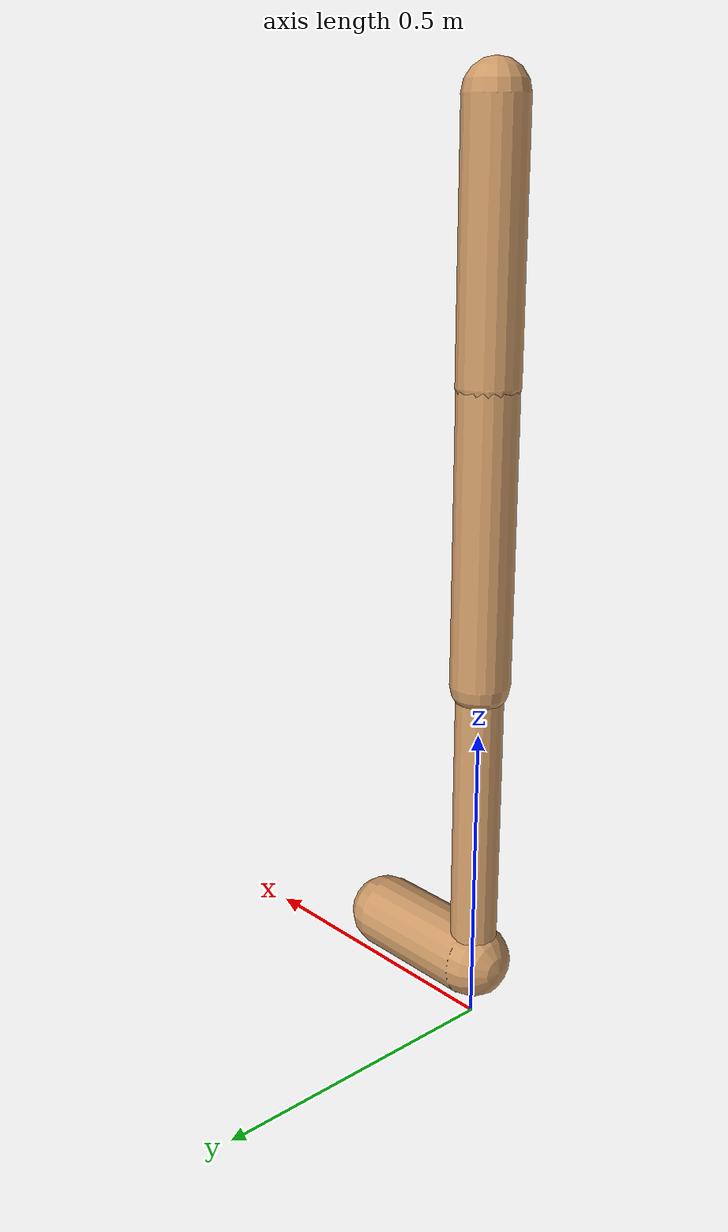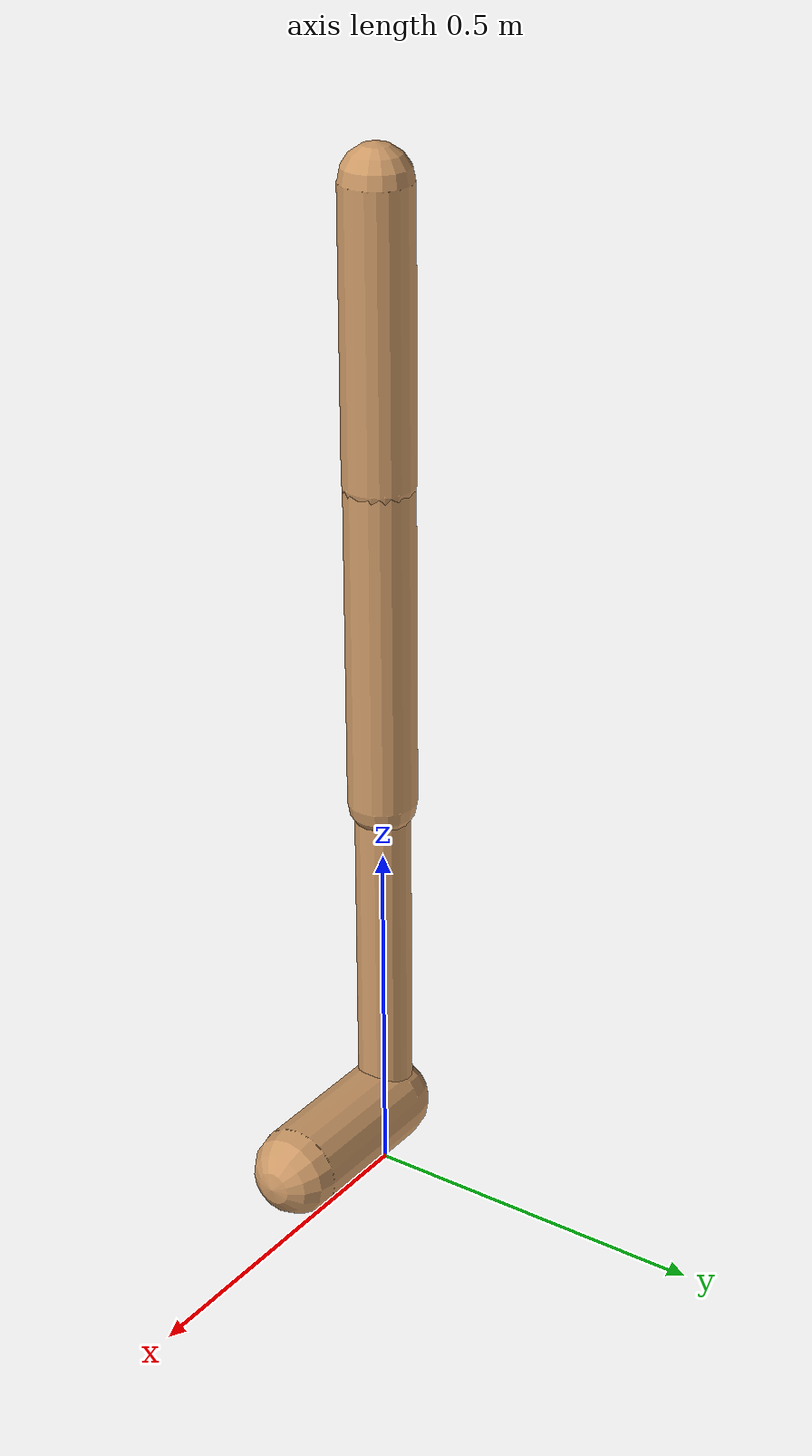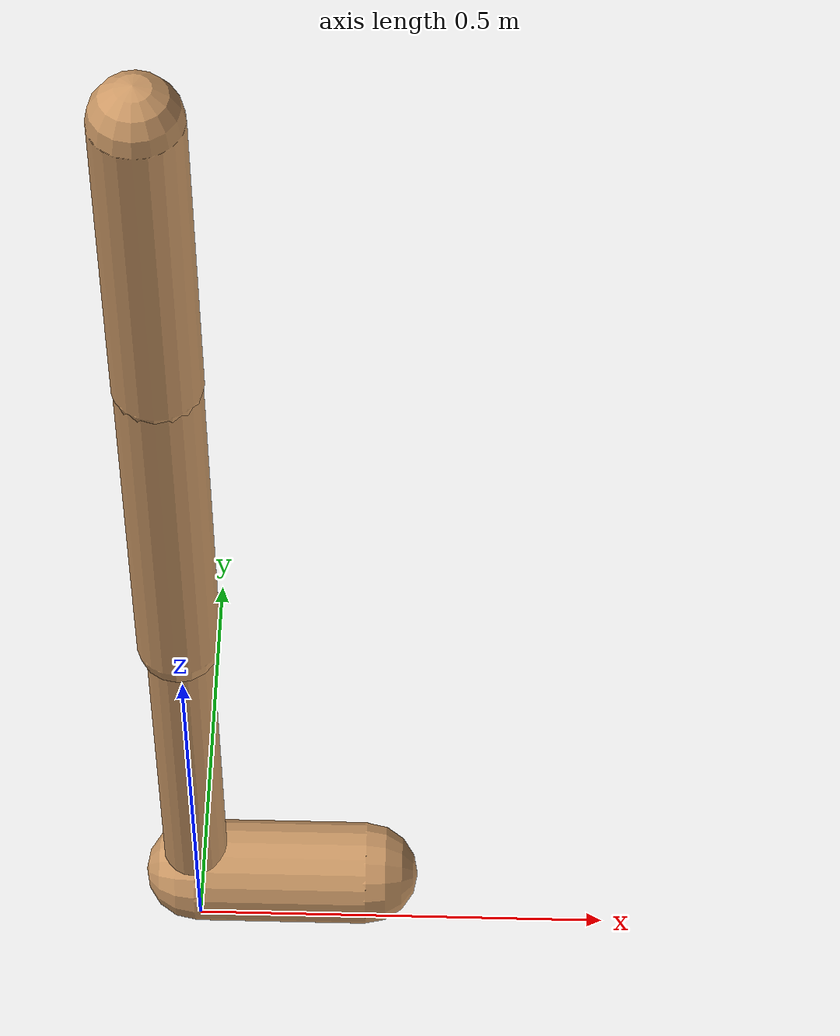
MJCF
<mujoco model="walker2d">
  <compiler angle="degree" coordinate="global" inertiafromgeom="true" />
  <default>
    <joint armature="0.01" damping=".1" limited="true" />
    <geom conaffinity="0" condim="3" contype="1" density="1000" friction="0.8 .1 .1" rgba="0.8 0.6 .4 1" />
  </default>
  <option integrator="RK4" timestep="0.002" />
  <worldbody>

    <body name="torso" pos="0 0 0.026244494592341492">
      <joint armature="0" axis="1 0 0" damping="0" limited="false" name="ignorex" pos="0 0 0" stiffness="0" type="slide" />
      <joint armature="0" axis="0 0 1" damping="0" limited="false" name="ignorez" pos="0 0 0" ref="1.25" stiffness="0" type="slide" />
      <joint armature="0" axis="0 1 0" damping="0" limited="false" name="ignorey" pos="0 0 0" stiffness="0" type="hinge" />
      <geom fromto="0 0 1.45 0 0 1.05" name="torso_geom" size="0.049305736561296554" type="capsule" />
      <body name="thigh">
        <joint axis="0 -1 0" name="thigh_joint" pos="0 0 1.05" range="-150 0" type="hinge" />
        <geom fromto="0.0 0.0 1.05 0.0 0.0 0.5875683972983645" name="thigh_geom" size="0.04799350516993204" type="capsule" />
        <body name="leg" pos="0.0 0.0 -0.012431602701635458">
          <joint axis="0 -1 0" name="leg_joint" pos="0 0 0.6" range="-150 0" type="hinge" />
          <geom fromto="0.0 0.0 0.6 0.0 0.0 0.08618710810929396" name="leg_geom" size="0.038394804135945634" type="capsule" />
          <body name="foot" pos="0.0 0.0 -0.013812891890706044">
            <joint axis="0 -1 0" name="foot_joint" pos="0 0 0.1" range="-45 45" type="hinge" />
            <geom fromto="-0.0 0.0 0.09999999999999999 0.20856643174920997 0.0 0.09999999999999999" name="foot_geom" size="0.062091295382481995" type="capsule" />
          </body>
        </body>
      </body>

      <body name="thigh_left">
        <joint axis="0 -1 0" name="thigh_left_joint" pos="0 0 1.05" range="-150 0" type="hinge" />
        <geom fromto="0.0 0.0 1.05 0.0 0.0 0.5875683972983645" name="thigh_left_geom" rgba=".7 .3 .6 1" size="0.04799350516993204" type="capsule" />
        <body name="leg_left" pos="0.0 0.0 -0.012431602701635458">
          <joint axis="0 -1 0" name="leg_left_joint" pos="0 0 0.6" range="-150 0" type="hinge" />
          <geom fromto="0.0 0.0 0.6 0.0 0.0 0.08618710810929396" name="leg_left_geom" rgba=".7 .3 .6 1" size="0.038394804135945634" type="capsule" />
          <body name="foot_left" pos="0.0 0.0 -0.013812891890706044">
            <joint axis="0 -1 0" name="foot_left_joint" pos="0 0 0.1" range="-45 45" type="hinge" />
            <geom fromto="-0.0 0.0 0.09999999999999999 0.20856643174920997 0.0 0.09999999999999999" name="foot_left_geom" rgba=".7 .3 .6 1" size="0.062091295382481995" type="capsule" />
          </body>
        </body>
      </body>
    </body>
  </worldbody>
  <actuator>

    <motor ctrllimited="true" ctrlrange="-1.0 1.0" gear="100" joint="thigh_joint" />
    <motor ctrllimited="true" ctrlrange="-1.0 1.0" gear="100" joint="leg_joint" />
    <motor ctrllimited="true" ctrlrange="-1.0 1.0" gear="100" joint="foot_joint" />
    <motor ctrllimited="true" ctrlrange="-1.0 1.0" gear="100" joint="thigh_left_joint" />
    <motor ctrllimited="true" ctrlrange="-1.0 1.0" gear="100" joint="leg_left_joint" />
    <motor ctrllimited="true" ctrlrange="-1.0 1.0" gear="100" joint="foot_left_joint" />

  </actuator>
</mujoco>
